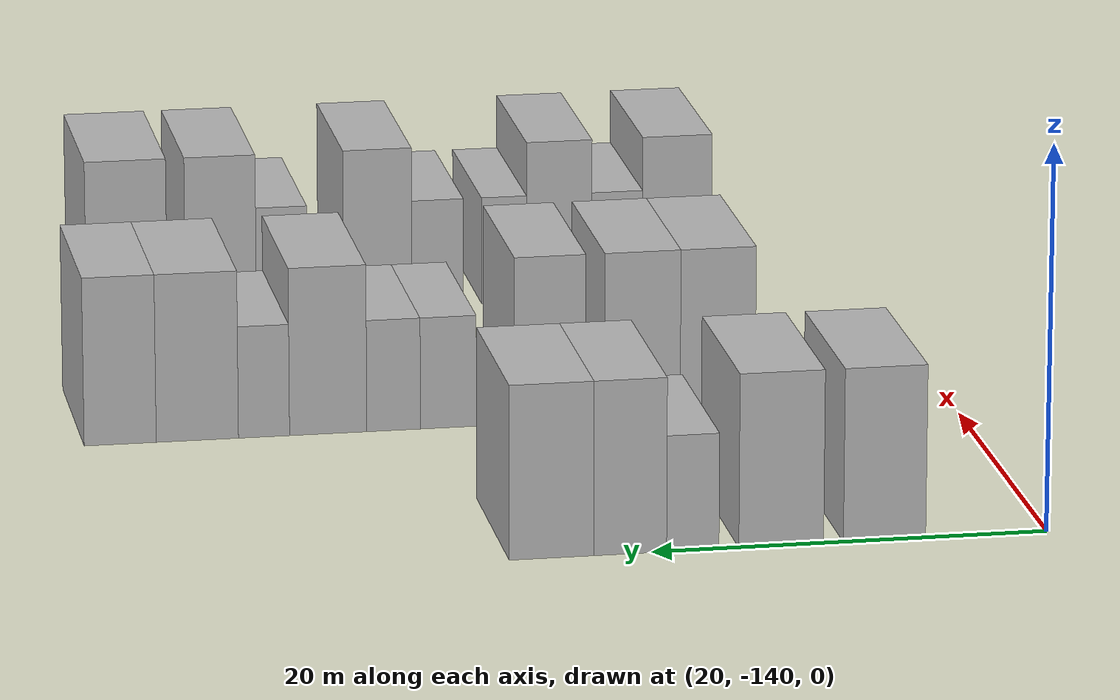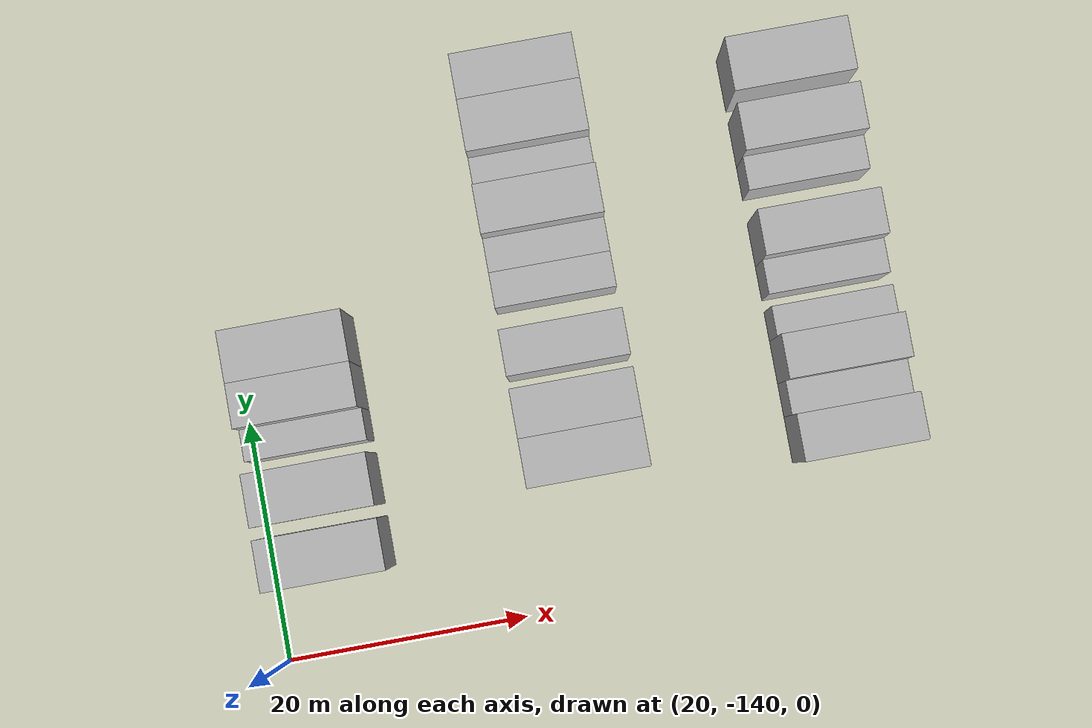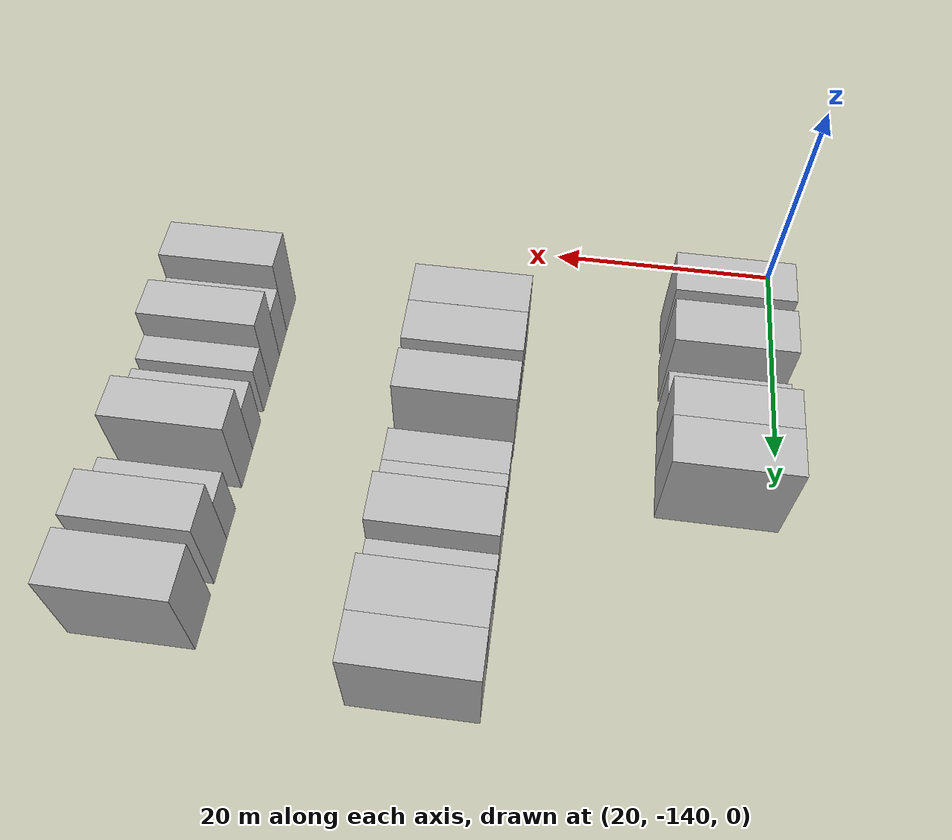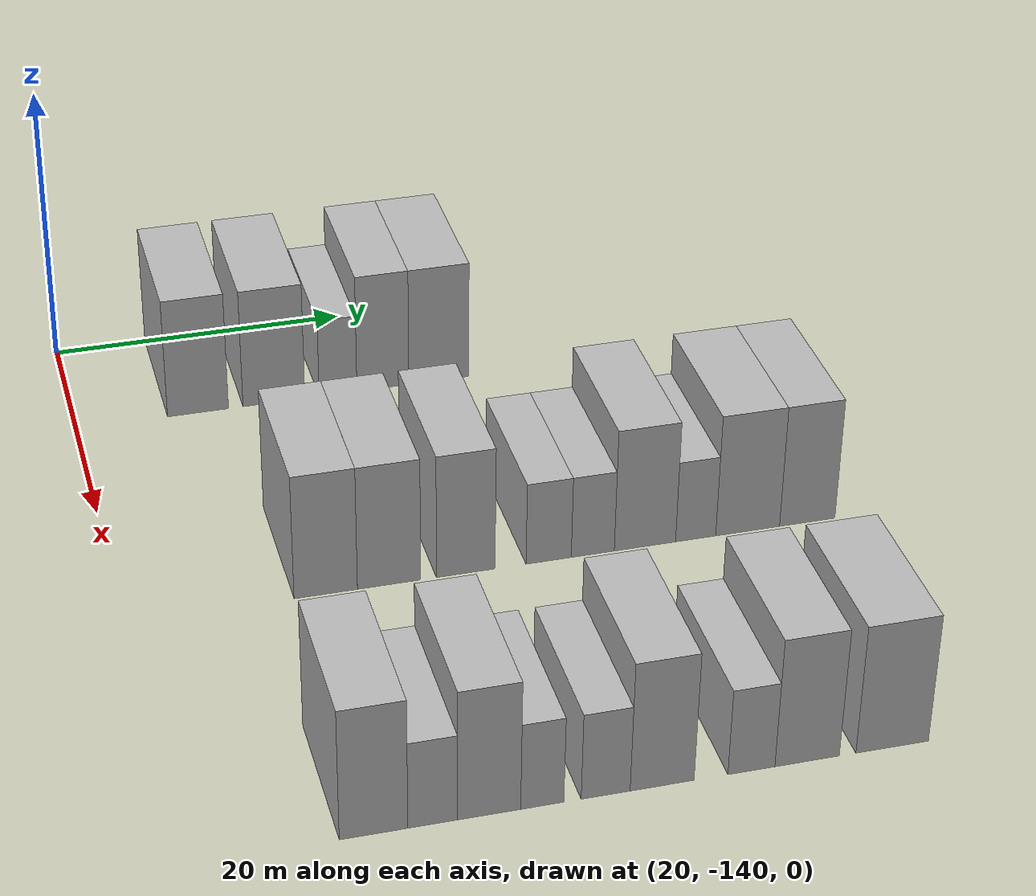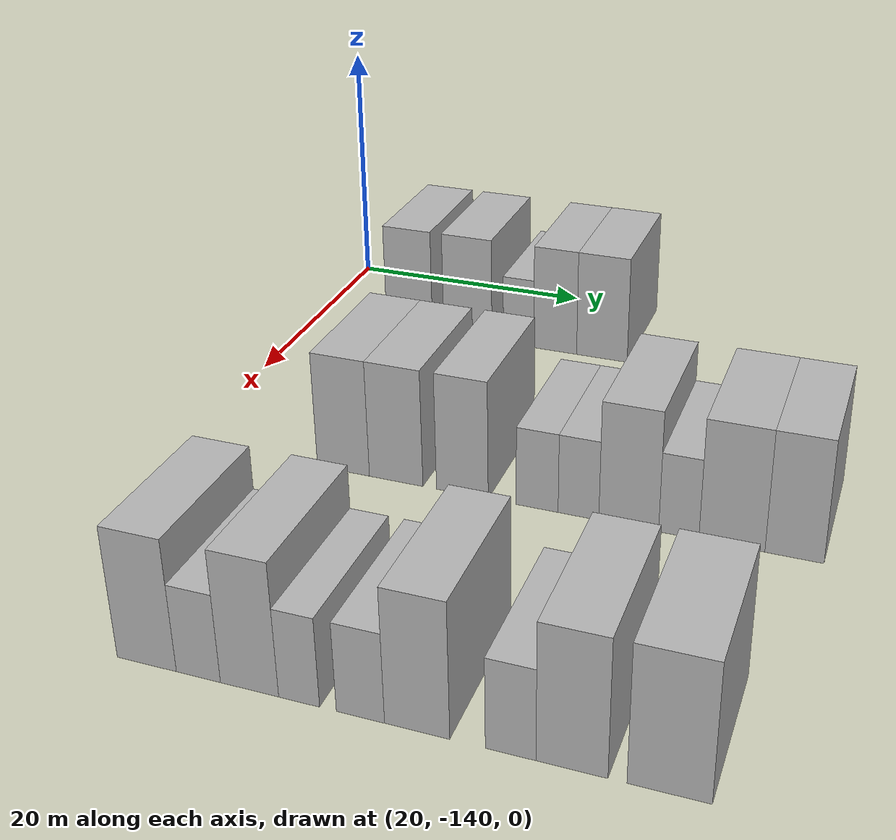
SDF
<sdf version="1.6">
 <world name="default">
  <model name="building_30">
   <static>1</static>
   <pose>25.0000 -131.7441 0 0.000000 0.000000 0.000000</pose>
   <link name="link">
    <pose>0 0 4.50 0 0 0</pose>
    <collision name="collision"><geometry><box><size>10.0000 4.1682 9.0000</size></box></geometry></collision>
    <visual name="visual">
     <cast_shadows>0</cast_shadows>
     <geometry><box><size>10.0000 4.1682 9.0000</size></box></geometry>
     <material>
      <script>
       <uri>model://HANNAS_wall/materials/scripts</uri>
       <uri>model://HANNAS_wall/materials/textures</uri>
       <name>vrc/HANNAS_wall</name>
      </script>
     </material>
    </visual>
   </link>
  </model>
  <model name="building_31">
   <static>1</static>
   <pose>25.0000 -126.5214 0 0.000000 0.000000 0.000000</pose>
   <link name="link">
    <pose>0 0 4.50 0 0 0</pose>
    <collision name="collision"><geometry><box><size>10.0000 4.2772 9.0000</size></box></geometry></collision>
    <visual name="visual">
     <cast_shadows>0</cast_shadows>
     <geometry><box><size>10.0000 4.2772 9.0000</size></box></geometry>
     <material>
      <script>
       <uri>model://HANNAS_wall/materials/scripts</uri>
       <uri>model://HANNAS_wall/materials/textures</uri>
       <name>vrc/HANNAS_wall</name>
      </script>
     </material>
    </visual>
   </link>
  </model>
  <model name="building_32">
   <static>1</static>
   <pose>25.0000 -122.0662 0 0.000000 0.000000 0.000000</pose>
   <link name="link">
    <pose>0 0 3.00 0 0 0</pose>
    <collision name="collision"><geometry><box><size>10.0000 2.6332 6.0000</size></box></geometry></collision>
    <visual name="visual">
     <cast_shadows>0</cast_shadows>
     <geometry><box><size>10.0000 2.6332 6.0000</size></box></geometry>
     <material>
      <script>
       <uri>model://HANNAS_wall/materials/scripts</uri>
       <uri>model://HANNAS_wall/materials/textures</uri>
       <name>vrc/HANNAS_wall</name>
      </script>
     </material>
    </visual>
   </link>
  </model>
  <model name="building_33">
   <static>1</static>
   <pose>25.0000 -118.9241 0 0.000000 0.000000 0.000000</pose>
   <link name="link">
    <pose>0 0 4.50 0 0 0</pose>
    <collision name="collision"><geometry><box><size>10.0000 3.6510 9.0000</size></box></geometry></collision>
    <visual name="visual">
     <cast_shadows>0</cast_shadows>
     <geometry><box><size>10.0000 3.6510 9.0000</size></box></geometry>
     <material>
      <script>
       <uri>model://HANNAS_wall/materials/scripts</uri>
       <uri>model://HANNAS_wall/materials/textures</uri>
       <name>vrc/HANNAS_wall</name>
      </script>
     </material>
    </visual>
   </link>
  </model>
  <model name="building_34">
   <static>1</static>
   <pose>25.0000 -114.9840 0 0.000000 0.000000 0.000000</pose>
   <link name="link">
    <pose>0 0 4.50 0 0 0</pose>
    <collision name="collision"><geometry><box><size>10.0000 4.2292 9.0000</size></box></geometry></collision>
    <visual name="visual">
     <cast_shadows>0</cast_shadows>
     <geometry><box><size>10.0000 4.2292 9.0000</size></box></geometry>
     <material>
      <script>
       <uri>model://HANNAS_wall/materials/scripts</uri>
       <uri>model://HANNAS_wall/materials/textures</uri>
       <name>vrc/HANNAS_wall</name>
      </script>
     </material>
    </visual>
   </link>
  </model>
  <model name="building_157">
   <static>1</static>
   <pose>47.0000 -127.5508 0 0.000000 0.000000 0.000000</pose>
   <link name="link">
    <pose>0 0 4.50 0 0 0</pose>
    <collision name="collision"><geometry><box><size>10.0000 3.9802 9.0000</size></box></geometry></collision>
    <visual name="visual">
     <cast_shadows>0</cast_shadows>
     <geometry><box><size>10.0000 3.9802 9.0000</size></box></geometry>
     <material>
      <script>
       <uri>model://HANNAS_wall/materials/scripts</uri>
       <uri>model://HANNAS_wall/materials/textures</uri>
       <name>vrc/HANNAS_wall</name>
      </script>
     </material>
    </visual>
   </link>
  </model>
  <model name="building_158">
   <static>1</static>
   <pose>47.0000 -123.5592 0 0.000000 0.000000 0.000000</pose>
   <link name="link">
    <pose>0 0 4.50 0 0 0</pose>
    <collision name="collision"><geometry><box><size>10.0000 4.0028 9.0000</size></box></geometry></collision>
    <visual name="visual">
     <cast_shadows>0</cast_shadows>
     <geometry><box><size>10.0000 4.0028 9.0000</size></box></geometry>
     <material>
      <script>
       <uri>model://HANNAS_wall/materials/scripts</uri>
       <uri>model://HANNAS_wall/materials/textures</uri>
       <name>vrc/HANNAS_wall</name>
      </script>
     </material>
    </visual>
   </link>
  </model>
  <model name="building_159">
   <static>1</static>
   <pose>47.0000 -118.6787 0 0.000000 0.000000 0.000000</pose>
   <link name="link">
    <pose>0 0 4.50 0 0 0</pose>
    <collision name="collision"><geometry><box><size>10.0000 3.7582 9.0000</size></box></geometry></collision>
    <visual name="visual">
     <cast_shadows>0</cast_shadows>
     <geometry><box><size>10.0000 3.7582 9.0000</size></box></geometry>
     <material>
      <script>
       <uri>model://HANNAS_wall/materials/scripts</uri>
       <uri>model://HANNAS_wall/materials/textures</uri>
       <name>vrc/HANNAS_wall</name>
      </script>
     </material>
    </visual>
   </link>
  </model>
  <model name="building_160">
   <static>1</static>
   <pose>47.0000 -113.3315 0 0.000000 0.000000 0.000000</pose>
   <link name="link">
    <pose>0 0 3.00 0 0 0</pose>
    <collision name="collision"><geometry><box><size>10.0000 2.9361 6.0000</size></box></geometry></collision>
    <visual name="visual">
     <cast_shadows>0</cast_shadows>
     <geometry><box><size>10.0000 2.9361 6.0000</size></box></geometry>
     <material>
      <script>
       <uri>model://HANNAS_wall/materials/scripts</uri>
       <uri>model://HANNAS_wall/materials/textures</uri>
       <name>vrc/HANNAS_wall</name>
      </script>
     </material>
    </visual>
   </link>
  </model>
  <model name="building_161">
   <static>1</static>
   <pose>47.0000 -110.4583 0 0.000000 0.000000 0.000000</pose>
   <link name="link">
    <pose>0 0 3.00 0 0 0</pose>
    <collision name="collision"><geometry><box><size>10.0000 2.8103 6.0000</size></box></geometry></collision>
    <visual name="visual">
     <cast_shadows>0</cast_shadows>
     <geometry><box><size>10.0000 2.8103 6.0000</size></box></geometry>
     <material>
      <script>
       <uri>model://HANNAS_wall/materials/scripts</uri>
       <uri>model://HANNAS_wall/materials/textures</uri>
       <name>vrc/HANNAS_wall</name>
      </script>
     </material>
    </visual>
   </link>
  </model>
  <model name="building_162">
   <static>1</static>
   <pose>47.0000 -107.0343 0 0.000000 0.000000 0.000000</pose>
   <link name="link">
    <pose>0 0 4.50 0 0 0</pose>
    <collision name="collision"><geometry><box><size>10.0000 4.0378 9.0000</size></box></geometry></collision>
    <visual name="visual">
     <cast_shadows>0</cast_shadows>
     <geometry><box><size>10.0000 4.0378 9.0000</size></box></geometry>
     <material>
      <script>
       <uri>model://HANNAS_wall/materials/scripts</uri>
       <uri>model://HANNAS_wall/materials/textures</uri>
       <name>vrc/HANNAS_wall</name>
      </script>
     </material>
    </visual>
   </link>
  </model>
  <model name="building_163">
   <static>1</static>
   <pose>47.0000 -103.6843 0 0.000000 0.000000 0.000000</pose>
   <link name="link">
    <pose>0 0 3.00 0 0 0</pose>
    <collision name="collision"><geometry><box><size>10.0000 2.6621 6.0000</size></box></geometry></collision>
    <visual name="visual">
     <cast_shadows>0</cast_shadows>
     <geometry><box><size>10.0000 2.6621 6.0000</size></box></geometry>
     <material>
      <script>
       <uri>model://HANNAS_wall/materials/scripts</uri>
       <uri>model://HANNAS_wall/materials/textures</uri>
       <name>vrc/HANNAS_wall</name>
      </script>
     </material>
    </visual>
   </link>
  </model>
  <model name="building_164">
   <static>1</static>
   <pose>47.0000 -100.2167 0 0.000000 0.000000 0.000000</pose>
   <link name="link">
    <pose>0 0 4.50 0 0 0</pose>
    <collision name="collision"><geometry><box><size>10.0000 4.2731 9.0000</size></box></geometry></collision>
    <visual name="visual">
     <cast_shadows>0</cast_shadows>
     <geometry><box><size>10.0000 4.2731 9.0000</size></box></geometry>
     <material>
      <script>
       <uri>model://HANNAS_wall/materials/scripts</uri>
       <uri>model://HANNAS_wall/materials/textures</uri>
       <name>vrc/HANNAS_wall</name>
      </script>
     </material>
    </visual>
   </link>
  </model>
  <model name="building_165">
   <static>1</static>
   <pose>47.0000 -96.2127 0 0.000000 0.000000 0.000000</pose>
   <link name="link">
    <pose>0 0 4.50 0 0 0</pose>
    <collision name="collision"><geometry><box><size>10.0000 3.7349 9.0000</size></box></geometry></collision>
    <visual name="visual">
     <cast_shadows>0</cast_shadows>
     <geometry><box><size>10.0000 3.7349 9.0000</size></box></geometry>
     <material>
      <script>
       <uri>model://HANNAS_wall/materials/scripts</uri>
       <uri>model://HANNAS_wall/materials/textures</uri>
       <name>vrc/HANNAS_wall</name>
      </script>
     </material>
    </visual>
   </link>
  </model>
  <model name="building_282">
   <static>1</static>
   <pose>69.0000 -129.4990 0 0.000000 0.000000 0.000000</pose>
   <link name="link">
    <pose>0 0 4.50 0 0 0</pose>
    <collision name="collision"><geometry><box><size>10.0000 3.8555 9.0000</size></box></geometry></collision>
    <visual name="visual">
     <cast_shadows>0</cast_shadows>
     <geometry><box><size>10.0000 3.8555 9.0000</size></box></geometry>
     <material>
      <script>
       <uri>model://HANNAS_wall/materials/scripts</uri>
       <uri>model://HANNAS_wall/materials/textures</uri>
       <name>vrc/HANNAS_wall</name>
      </script>
     </material>
    </visual>
   </link>
  </model>
  <model name="building_283">
   <static>1</static>
   <pose>69.0000 -126.1673 0 0.000000 0.000000 0.000000</pose>
   <link name="link">
    <pose>0 0 3.00 0 0 0</pose>
    <collision name="collision"><geometry><box><size>10.0000 2.8080 6.0000</size></box></geometry></collision>
    <visual name="visual">
     <cast_shadows>0</cast_shadows>
     <geometry><box><size>10.0000 2.8080 6.0000</size></box></geometry>
     <material>
      <script>
       <uri>model://HANNAS_wall/materials/scripts</uri>
       <uri>model://HANNAS_wall/materials/textures</uri>
       <name>vrc/HANNAS_wall</name>
      </script>
     </material>
    </visual>
   </link>
  </model>
  <model name="building_284">
   <static>1</static>
   <pose>69.0000 -122.9547 0 0.000000 0.000000 0.000000</pose>
   <link name="link">
    <pose>0 0 4.50 0 0 0</pose>
    <collision name="collision"><geometry><box><size>10.0000 3.6173 9.0000</size></box></geometry></collision>
    <visual name="visual">
     <cast_shadows>0</cast_shadows>
     <geometry><box><size>10.0000 3.6173 9.0000</size></box></geometry>
     <material>
      <script>
       <uri>model://HANNAS_wall/materials/scripts</uri>
       <uri>model://HANNAS_wall/materials/textures</uri>
       <name>vrc/HANNAS_wall</name>
      </script>
     </material>
    </visual>
   </link>
  </model>
  <model name="building_285">
   <static>1</static>
   <pose>69.0000 -119.9005 0 0.000000 0.000000 0.000000</pose>
   <link name="link">
    <pose>0 0 3.00 0 0 0</pose>
    <collision name="collision"><geometry><box><size>10.0000 2.4911 6.0000</size></box></geometry></collision>
    <visual name="visual">
     <cast_shadows>0</cast_shadows>
     <geometry><box><size>10.0000 2.4911 6.0000</size></box></geometry>
     <material>
      <script>
       <uri>model://HANNAS_wall/materials/scripts</uri>
       <uri>model://HANNAS_wall/materials/textures</uri>
       <name>vrc/HANNAS_wall</name>
      </script>
     </material>
    </visual>
   </link>
  </model>
  <model name="building_286">
   <static>1</static>
   <pose>69.0000 -116.2302 0 0.000000 0.000000 0.000000</pose>
   <link name="link">
    <pose>0 0 3.00 0 0 0</pose>
    <collision name="collision"><geometry><box><size>10.0000 2.8496 6.0000</size></box></geometry></collision>
    <visual name="visual">
     <cast_shadows>0</cast_shadows>
     <geometry><box><size>10.0000 2.8496 6.0000</size></box></geometry>
     <material>
      <script>
       <uri>model://HANNAS_wall/materials/scripts</uri>
       <uri>model://HANNAS_wall/materials/textures</uri>
       <name>vrc/HANNAS_wall</name>
      </script>
     </material>
    </visual>
   </link>
  </model>
  <model name="building_287">
   <static>1</static>
   <pose>69.0000 -112.9275 0 0.000000 0.000000 0.000000</pose>
   <link name="link">
    <pose>0 0 4.50 0 0 0</pose>
    <collision name="collision"><geometry><box><size>10.0000 3.7557 9.0000</size></box></geometry></collision>
    <visual name="visual">
     <cast_shadows>0</cast_shadows>
     <geometry><box><size>10.0000 3.7557 9.0000</size></box></geometry>
     <material>
      <script>
       <uri>model://HANNAS_wall/materials/scripts</uri>
       <uri>model://HANNAS_wall/materials/textures</uri>
       <name>vrc/HANNAS_wall</name>
      </script>
     </material>
    </visual>
   </link>
  </model>
  <model name="building_288">
   <static>1</static>
   <pose>69.0000 -107.6530 0 0.000000 0.000000 0.000000</pose>
   <link name="link">
    <pose>0 0 3.00 0 0 0</pose>
    <collision name="collision"><geometry><box><size>10.0000 2.7933 6.0000</size></box></geometry></collision>
    <visual name="visual">
     <cast_shadows>0</cast_shadows>
     <geometry><box><size>10.0000 2.7933 6.0000</size></box></geometry>
     <material>
      <script>
       <uri>model://HANNAS_wall/materials/scripts</uri>
       <uri>model://HANNAS_wall/materials/textures</uri>
       <name>vrc/HANNAS_wall</name>
      </script>
     </material>
    </visual>
   </link>
  </model>
  <model name="building_289">
   <static>1</static>
   <pose>69.0000 -104.3206 0 0.000000 0.000000 0.000000</pose>
   <link name="link">
    <pose>0 0 4.50 0 0 0</pose>
    <collision name="collision"><geometry><box><size>10.0000 3.8717 9.0000</size></box></geometry></collision>
    <visual name="visual">
     <cast_shadows>0</cast_shadows>
     <geometry><box><size>10.0000 3.8717 9.0000</size></box></geometry>
     <material>
      <script>
       <uri>model://HANNAS_wall/materials/scripts</uri>
       <uri>model://HANNAS_wall/materials/textures</uri>
       <name>vrc/HANNAS_wall</name>
      </script>
     </material>
    </visual>
   </link>
  </model>
  <model name="building_290">
   <static>1</static>
   <pose>69.0000 -99.1796 0 0.000000 0.000000 0.000000</pose>
   <link name="link">
    <pose>0 0 4.50 0 0 0</pose>
    <collision name="collision"><geometry><box><size>10.0000 4.4102 9.0000</size></box></geometry></collision>
    <visual name="visual">
     <cast_shadows>0</cast_shadows>
     <geometry><box><size>10.0000 4.4102 9.0000</size></box></geometry>
     <material>
      <script>
       <uri>model://HANNAS_wall/materials/scripts</uri>
       <uri>model://HANNAS_wall/materials/textures</uri>
       <name>vrc/HANNAS_wall</name>
      </script>
     </material>
    </visual>
   </link>
  </model>
 </world>
</sdf>
